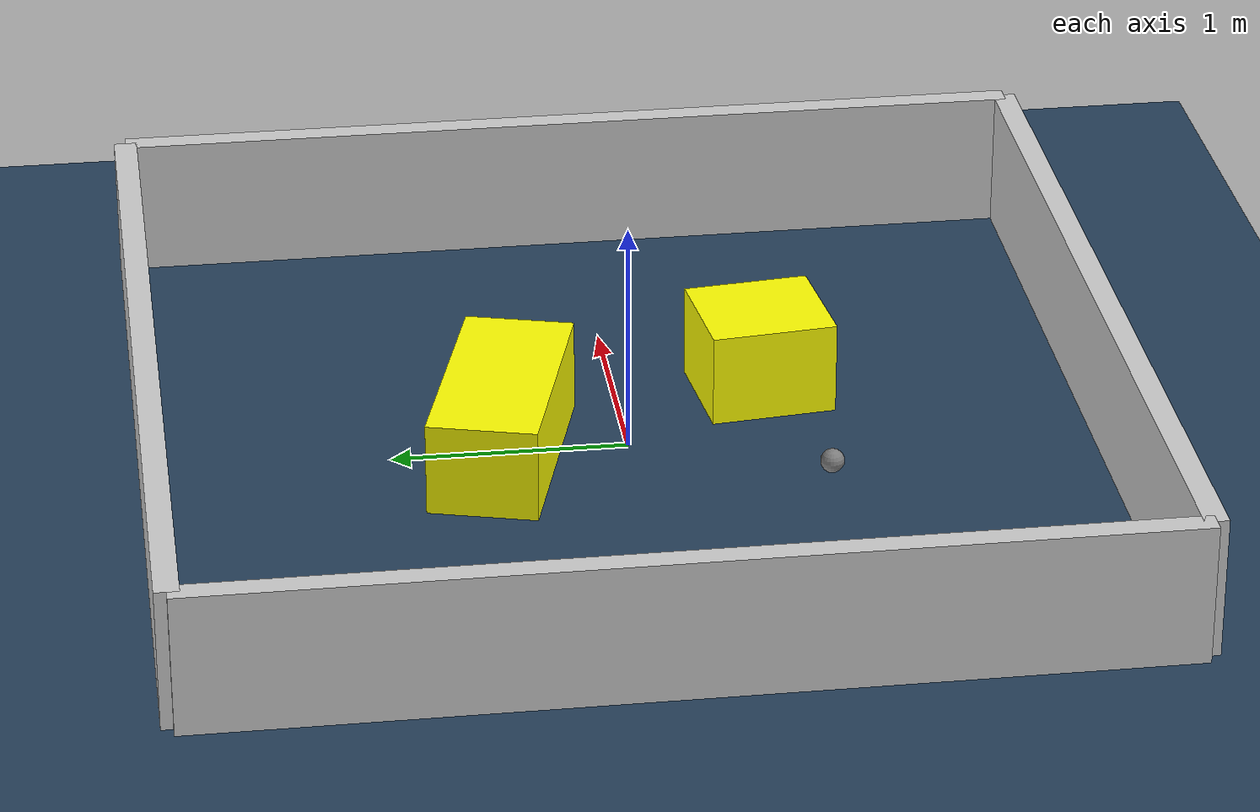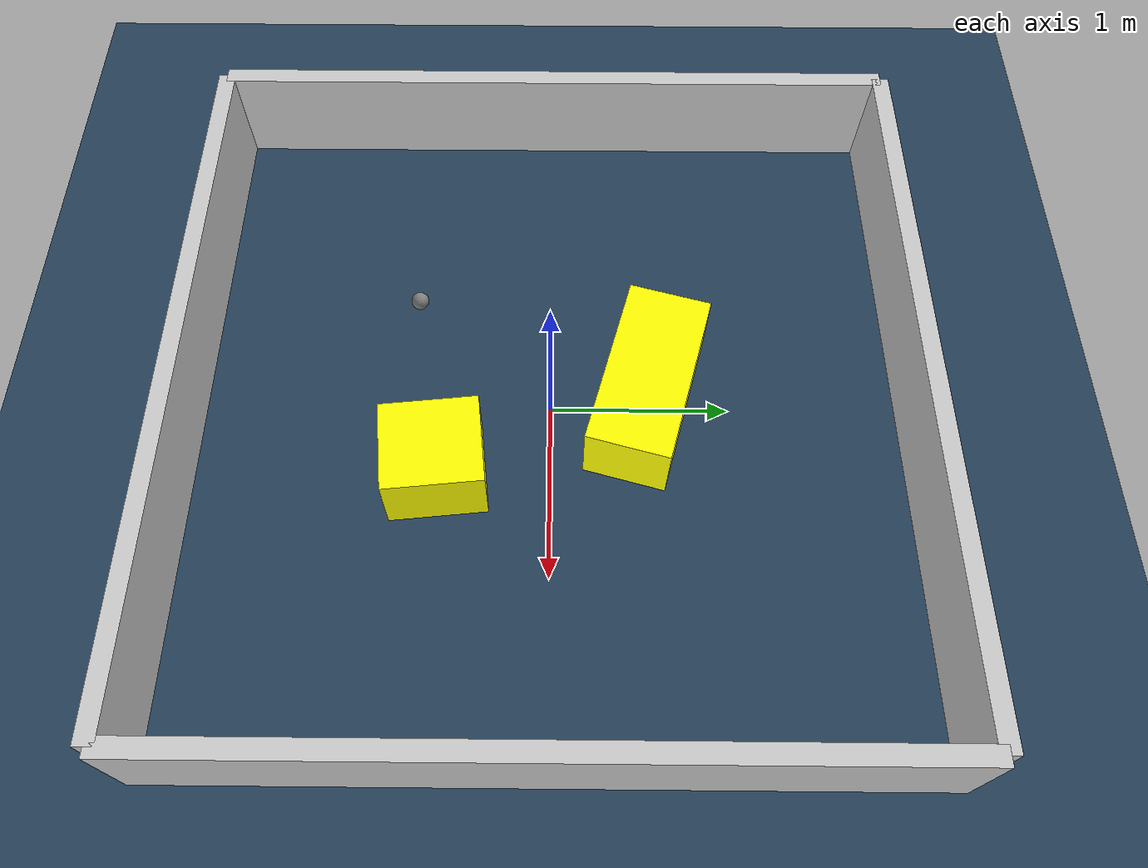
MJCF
<?xml version="1.0" ?>
<mujoco model="generated_environment">
  <option timestep="0.01" integrator="RK4" cone="elliptic"/>
  <default>
    <geom density="1"/>
  </default>
  <asset>
    <texture builtin="gradient" height="3072" rgb1="0.3 0.5 0.7" rgb2="0 0 0" type="skybox" width="512"/>
    <texture builtin="checker" height="300" mark="edge" markrgb="0.8 0.8 0.8" name="groundplane" rgb1="0.2 0.3 0.4" rgb2="0.1 0.2 0.3" type="2d" width="300"/>
    <material name="groundplane" reflectance="0.2" texrepeat="5 5" texture="groundplane" texuniform="true"/>
    <material name="robot" rgba="0.0 1.0 0.0 1"/>
  </asset>
  <worldbody>
    <light dir="0 0 -1" directional="true" pos="0 0 1.5"/>
    <geom condim="4" friction="1.0 0.005 0.001" material="groundplane" name="floor" size="0 0 0.05" type="plane"/>
    <body name="walls">
      <geom name="wall_1" condim="4" pos="-2.0 0.0 0.3" rgba="0.800000011920929 0.800000011920929 0.800000011920929 1.0" size="0.05 2.0 0.3" type="box"/>
      <geom name="wall_2" condim="4" pos="2.0 0.0 0.3" rgba="0.800000011920929 0.800000011920929 0.800000011920929 1.0" size="0.05 2.0 0.3" type="box"/>
      <geom name="wall_3" condim="4" pos="0.0 -2.0 0.3" rgba="0.800000011920929 0.800000011920929 0.800000011920929 1.0" size="2.0 0.05 0.3" type="box"/>
      <geom name="wall_4" condim="4" pos="0.0 2.0 0.3" rgba="0.800000011920929 0.800000011920929 0.800000011920929 1.0" size="2.0 0.05 0.3" type="box"/>
    </body>
    <body name="robot">
      <joint name="joint_x" type="slide" pos="0 0 0" axis="1 0 0"/>
      <joint name="joint_y" type="slide" pos="0 0 0" axis="0 1 0"/>
      <geom name="robot" type="sphere" pos="-0.6087664661740275 -0.7610754498833379 0.2" size="0.05" mass="5." friction="1.0 0.005 0.0001" condim="4"/>
      <site name="sensor_ball"/>
    </body>
    <body name="obstacle_1_movable">
      <geom name="obstacle_1_movable" condim="4" pos="0.40794631021185346 -0.6223875454994114 0.2" euler="0 0 6.054041366528216" friction="1.0 0.005 0.001" rgba="1 1 0 1" size="0.24852719492261996 0.2694742329338975 0.2" type="box" mass="0.1"/>
      <joint type="free"/>
    </body>
    <body name="obstacle_2_movable">
      <geom name="obstacle_2_movable" condim="4" pos="-0.049652870755805045 0.538295554329018 0.2" euler="0 0 74.53029337013979" friction="1.0 0.005 0.001" rgba="1 1 0 1" size="0.23193377320690567 0.500494349180713 0.2" type="box" mass="0.1"/>
      <joint type="free"/>
    </body>
  </worldbody>
  <actuator>
    <motor name="actuator_x" joint="joint_x" gear="1" ctrlrange="-1 1"/>
    <motor name="actuator_y" joint="joint_y" gear="1" ctrlrange="-1 1"/>
  </actuator>
</mujoco>
